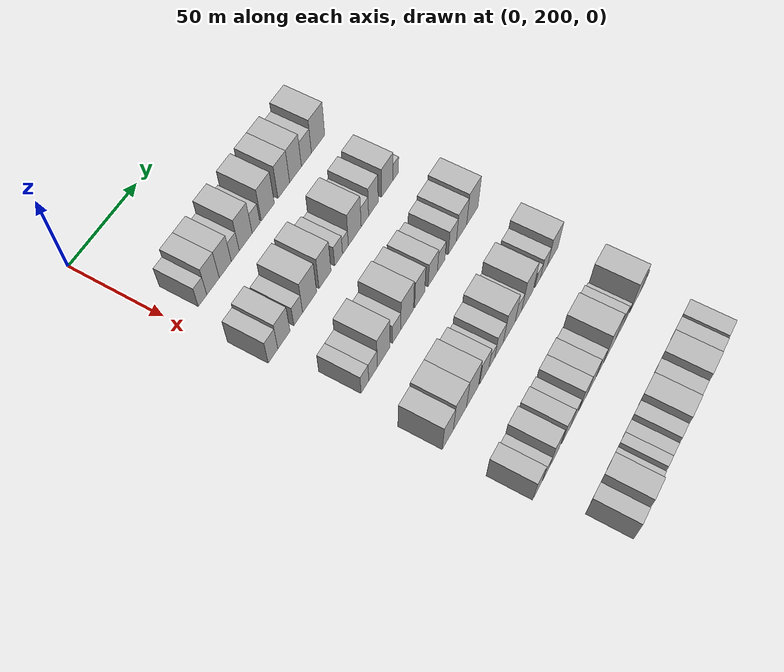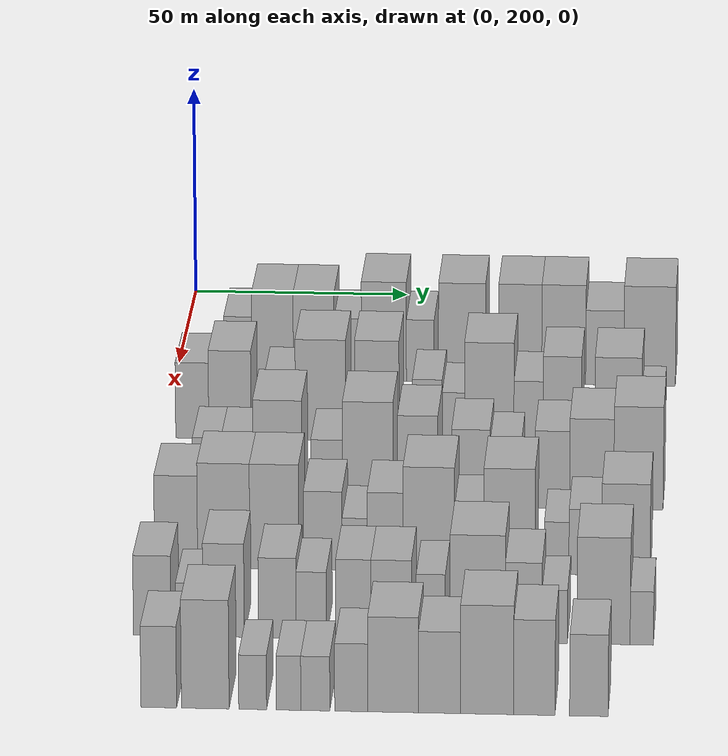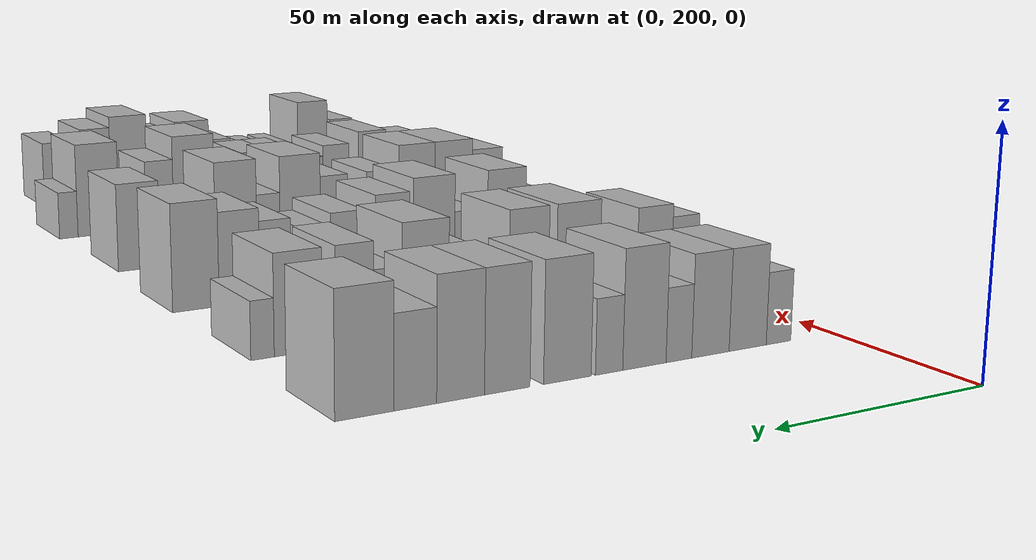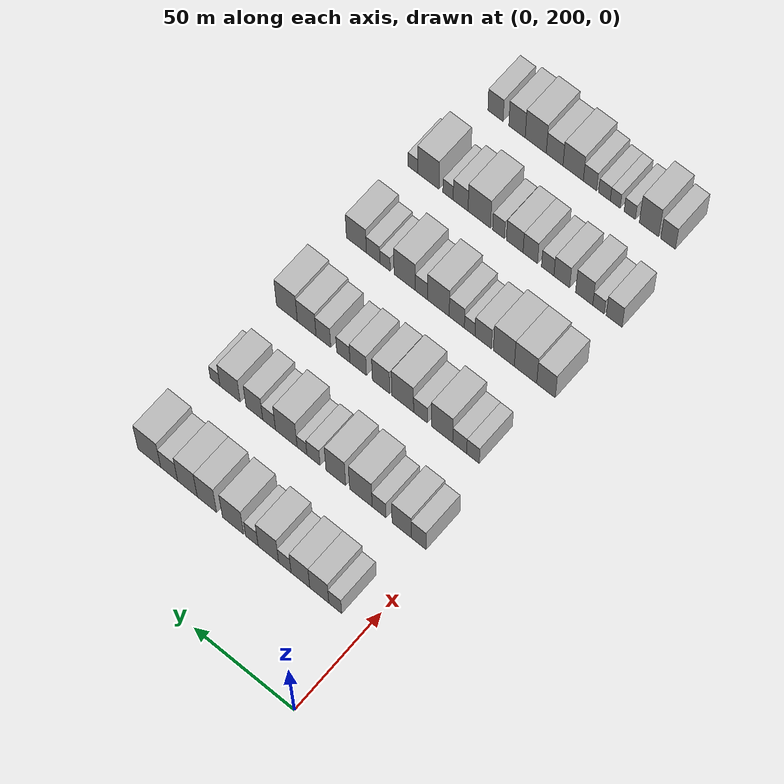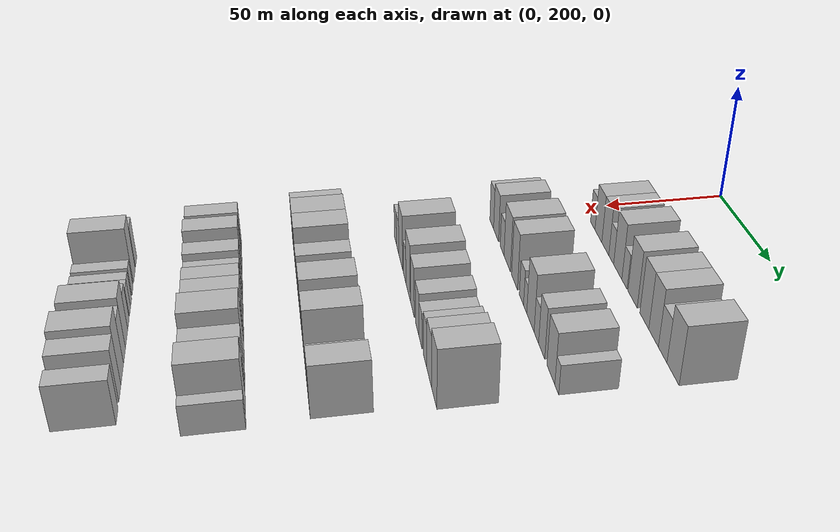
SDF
<sdf version="1.6">
 <world name="default">
  <model name="building_86">
   <static>1</static>
   <pose>50.0000 214.3302 0 0.000000 0.000000 0.000000</pose>
   <link name="link">
    <pose>0 0 7.50 0 0 0</pose>
    <collision name="collision"><geometry><box><size>20.0000 6.4321 15.0000</size></box></geometry></collision>
    <visual name="visual">
     <cast_shadows>0</cast_shadows>
     <geometry><box><size>20.0000 6.4321 15.0000</size></box></geometry>
     <material>
      <script>
       <uri>model://HANNAS_wall/materials/scripts</uri>
       <uri>model://HANNAS_wall/materials/textures</uri>
       <name>vrc/HANNAS_wall</name>
      </script>
     </material>
    </visual>
   </link>
  </model>
  <model name="building_87">
   <static>1</static>
   <pose>50.0000 222.3023 0 0.000000 0.000000 0.000000</pose>
   <link name="link">
    <pose>0 0 10.50 0 0 0</pose>
    <collision name="collision"><geometry><box><size>20.0000 9.5120 21.0000</size></box></geometry></collision>
    <visual name="visual">
     <cast_shadows>0</cast_shadows>
     <geometry><box><size>20.0000 9.5120 21.0000</size></box></geometry>
     <material>
      <script>
       <uri>model://HANNAS_wall/materials/scripts</uri>
       <uri>model://HANNAS_wall/materials/textures</uri>
       <name>vrc/HANNAS_wall</name>
      </script>
     </material>
    </visual>
   </link>
  </model>
  <model name="building_88">
   <static>1</static>
   <pose>50.0000 231.7271 0 0.000000 0.000000 0.000000</pose>
   <link name="link">
    <pose>0 0 10.50 0 0 0</pose>
    <collision name="collision"><geometry><box><size>20.0000 9.3376 21.0000</size></box></geometry></collision>
    <visual name="visual">
     <cast_shadows>0</cast_shadows>
     <geometry><box><size>20.0000 9.3376 21.0000</size></box></geometry>
     <material>
      <script>
       <uri>model://HANNAS_wall/materials/scripts</uri>
       <uri>model://HANNAS_wall/materials/textures</uri>
       <name>vrc/HANNAS_wall</name>
      </script>
     </material>
    </visual>
   </link>
  </model>
  <model name="building_89">
   <static>1</static>
   <pose>50.0000 239.5368 0 0.000000 0.000000 0.000000</pose>
   <link name="link">
    <pose>0 0 7.50 0 0 0</pose>
    <collision name="collision"><geometry><box><size>20.0000 6.2818 15.0000</size></box></geometry></collision>
    <visual name="visual">
     <cast_shadows>0</cast_shadows>
     <geometry><box><size>20.0000 6.2818 15.0000</size></box></geometry>
     <material>
      <script>
       <uri>model://HANNAS_wall/materials/scripts</uri>
       <uri>model://HANNAS_wall/materials/textures</uri>
       <name>vrc/HANNAS_wall</name>
      </script>
     </material>
    </visual>
   </link>
  </model>
  <model name="building_90">
   <static>1</static>
   <pose>50.0000 247.8378 0 0.000000 0.000000 0.000000</pose>
   <link name="link">
    <pose>0 0 12.00 0 0 0</pose>
    <collision name="collision"><geometry><box><size>20.0000 10.3202 24.0000</size></box></geometry></collision>
    <visual name="visual">
     <cast_shadows>0</cast_shadows>
     <geometry><box><size>20.0000 10.3202 24.0000</size></box></geometry>
     <material>
      <script>
       <uri>model://HANNAS_wall/materials/scripts</uri>
       <uri>model://HANNAS_wall/materials/textures</uri>
       <name>vrc/HANNAS_wall</name>
      </script>
     </material>
    </visual>
   </link>
  </model>
  <model name="building_91">
   <static>1</static>
   <pose>50.0000 256.1801 0 0.000000 0.000000 0.000000</pose>
   <link name="link">
    <pose>0 0 7.50 0 0 0</pose>
    <collision name="collision"><geometry><box><size>20.0000 6.3644 15.0000</size></box></geometry></collision>
    <visual name="visual">
     <cast_shadows>0</cast_shadows>
     <geometry><box><size>20.0000 6.3644 15.0000</size></box></geometry>
     <material>
      <script>
       <uri>model://HANNAS_wall/materials/scripts</uri>
       <uri>model://HANNAS_wall/materials/textures</uri>
       <name>vrc/HANNAS_wall</name>
      </script>
     </material>
    </visual>
   </link>
  </model>
  <model name="building_92">
   <static>1</static>
   <pose>50.0000 265.7434 0 0.000000 0.000000 0.000000</pose>
   <link name="link">
    <pose>0 0 12.00 0 0 0</pose>
    <collision name="collision"><geometry><box><size>20.0000 10.7623 24.0000</size></box></geometry></collision>
    <visual name="visual">
     <cast_shadows>0</cast_shadows>
     <geometry><box><size>20.0000 10.7623 24.0000</size></box></geometry>
     <material>
      <script>
       <uri>model://HANNAS_wall/materials/scripts</uri>
       <uri>model://HANNAS_wall/materials/textures</uri>
       <name>vrc/HANNAS_wall</name>
      </script>
     </material>
    </visual>
   </link>
  </model>
  <model name="building_93">
   <static>1</static>
   <pose>50.0000 279.0697 0 0.000000 0.000000 0.000000</pose>
   <link name="link">
    <pose>0 0 12.00 0 0 0</pose>
    <collision name="collision"><geometry><box><size>20.0000 9.8902 24.0000</size></box></geometry></collision>
    <visual name="visual">
     <cast_shadows>0</cast_shadows>
     <geometry><box><size>20.0000 9.8902 24.0000</size></box></geometry>
     <material>
      <script>
       <uri>model://HANNAS_wall/materials/scripts</uri>
       <uri>model://HANNAS_wall/materials/textures</uri>
       <name>vrc/HANNAS_wall</name>
      </script>
     </material>
    </visual>
   </link>
  </model>
  <model name="building_94">
   <static>1</static>
   <pose>50.0000 289.0580 0 0.000000 0.000000 0.000000</pose>
   <link name="link">
    <pose>0 0 12.00 0 0 0</pose>
    <collision name="collision"><geometry><box><size>20.0000 10.0862 24.0000</size></box></geometry></collision>
    <visual name="visual">
     <cast_shadows>0</cast_shadows>
     <geometry><box><size>20.0000 10.0862 24.0000</size></box></geometry>
     <material>
      <script>
       <uri>model://HANNAS_wall/materials/scripts</uri>
       <uri>model://HANNAS_wall/materials/textures</uri>
       <name>vrc/HANNAS_wall</name>
      </script>
     </material>
    </visual>
   </link>
  </model>
  <model name="building_95">
   <static>1</static>
   <pose>50.0000 298.4549 0 0.000000 0.000000 0.000000</pose>
   <link name="link">
    <pose>0 0 9.00 0 0 0</pose>
    <collision name="collision"><geometry><box><size>20.0000 8.7076 18.0000</size></box></geometry></collision>
    <visual name="visual">
     <cast_shadows>0</cast_shadows>
     <geometry><box><size>20.0000 8.7076 18.0000</size></box></geometry>
     <material>
      <script>
       <uri>model://HANNAS_wall/materials/scripts</uri>
       <uri>model://HANNAS_wall/materials/textures</uri>
       <name>vrc/HANNAS_wall</name>
      </script>
     </material>
    </visual>
   </link>
  </model>
  <model name="building_96">
   <static>1</static>
   <pose>50.0000 308.7177 0 0.000000 0.000000 0.000000</pose>
   <link name="link">
    <pose>0 0 12.00 0 0 0</pose>
    <collision name="collision"><geometry><box><size>20.0000 11.8181 24.0000</size></box></geometry></collision>
    <visual name="visual">
     <cast_shadows>0</cast_shadows>
     <geometry><box><size>20.0000 11.8181 24.0000</size></box></geometry>
     <material>
      <script>
       <uri>model://HANNAS_wall/materials/scripts</uri>
       <uri>model://HANNAS_wall/materials/textures</uri>
       <name>vrc/HANNAS_wall</name>
      </script>
     </material>
    </visual>
   </link>
  </model>
  <model name="building_226">
   <static>1</static>
   <pose>90.0000 206.9565 0 0.000000 0.000000 0.000000</pose>
   <link name="link">
    <pose>0 0 9.00 0 0 0</pose>
    <collision name="collision"><geometry><box><size>20.0000 7.4415 18.0000</size></box></geometry></collision>
    <visual name="visual">
     <cast_shadows>0</cast_shadows>
     <geometry><box><size>20.0000 7.4415 18.0000</size></box></geometry>
     <material>
      <script>
       <uri>model://HANNAS_wall/materials/scripts</uri>
       <uri>model://HANNAS_wall/materials/textures</uri>
       <name>vrc/HANNAS_wall</name>
      </script>
     </material>
    </visual>
   </link>
  </model>
  <model name="building_227">
   <static>1</static>
   <pose>90.0000 215.4435 0 0.000000 0.000000 0.000000</pose>
   <link name="link">
    <pose>0 0 10.50 0 0 0</pose>
    <collision name="collision"><geometry><box><size>20.0000 9.5324 21.0000</size></box></geometry></collision>
    <visual name="visual">
     <cast_shadows>0</cast_shadows>
     <geometry><box><size>20.0000 9.5324 21.0000</size></box></geometry>
     <material>
      <script>
       <uri>model://HANNAS_wall/materials/scripts</uri>
       <uri>model://HANNAS_wall/materials/textures</uri>
       <name>vrc/HANNAS_wall</name>
      </script>
     </material>
    </visual>
   </link>
  </model>
  <model name="building_228">
   <static>1</static>
   <pose>90.0000 226.7022 0 0.000000 0.000000 0.000000</pose>
   <link name="link">
    <pose>0 0 7.50 0 0 0</pose>
    <collision name="collision"><geometry><box><size>20.0000 6.9851 15.0000</size></box></geometry></collision>
    <visual name="visual">
     <cast_shadows>0</cast_shadows>
     <geometry><box><size>20.0000 6.9851 15.0000</size></box></geometry>
     <material>
      <script>
       <uri>model://HANNAS_wall/materials/scripts</uri>
       <uri>model://HANNAS_wall/materials/textures</uri>
       <name>vrc/HANNAS_wall</name>
      </script>
     </material>
    </visual>
   </link>
  </model>
  <model name="building_229">
   <static>1</static>
   <pose>90.0000 235.8623 0 0.000000 0.000000 0.000000</pose>
   <link name="link">
    <pose>0 0 12.00 0 0 0</pose>
    <collision name="collision"><geometry><box><size>20.0000 11.3350 24.0000</size></box></geometry></collision>
    <visual name="visual">
     <cast_shadows>0</cast_shadows>
     <geometry><box><size>20.0000 11.3350 24.0000</size></box></geometry>
     <material>
      <script>
       <uri>model://HANNAS_wall/materials/scripts</uri>
       <uri>model://HANNAS_wall/materials/textures</uri>
       <name>vrc/HANNAS_wall</name>
      </script>
     </material>
    </visual>
   </link>
  </model>
  <model name="building_230">
   <static>1</static>
   <pose>90.0000 248.5127 0 0.000000 0.000000 0.000000</pose>
   <link name="link">
    <pose>0 0 12.00 0 0 0</pose>
    <collision name="collision"><geometry><box><size>20.0000 9.9658 24.0000</size></box></geometry></collision>
    <visual name="visual">
     <cast_shadows>0</cast_shadows>
     <geometry><box><size>20.0000 9.9658 24.0000</size></box></geometry>
     <material>
      <script>
       <uri>model://HANNAS_wall/materials/scripts</uri>
       <uri>model://HANNAS_wall/materials/textures</uri>
       <name>vrc/HANNAS_wall</name>
      </script>
     </material>
    </visual>
   </link>
  </model>
  <model name="building_231">
   <static>1</static>
   <pose>90.0000 259.8453 0 0.000000 0.000000 0.000000</pose>
   <link name="link">
    <pose>0 0 7.50 0 0 0</pose>
    <collision name="collision"><geometry><box><size>20.0000 6.6996 15.0000</size></box></geometry></collision>
    <visual name="visual">
     <cast_shadows>0</cast_shadows>
     <geometry><box><size>20.0000 6.6996 15.0000</size></box></geometry>
     <material>
      <script>
       <uri>model://HANNAS_wall/materials/scripts</uri>
       <uri>model://HANNAS_wall/materials/textures</uri>
       <name>vrc/HANNAS_wall</name>
      </script>
     </material>
    </visual>
   </link>
  </model>
  <model name="building_232">
   <static>1</static>
   <pose>90.0000 265.6976 0 0.000000 0.000000 0.000000</pose>
   <link name="link">
    <pose>0 0 6.00 0 0 0</pose>
    <collision name="collision"><geometry><box><size>20.0000 5.0049 12.0000</size></box></geometry></collision>
    <visual name="visual">
     <cast_shadows>0</cast_shadows>
     <geometry><box><size>20.0000 5.0049 12.0000</size></box></geometry>
     <material>
      <script>
       <uri>model://HANNAS_wall/materials/scripts</uri>
       <uri>model://HANNAS_wall/materials/textures</uri>
       <name>vrc/HANNAS_wall</name>
      </script>
     </material>
    </visual>
   </link>
  </model>
  <model name="building_233">
   <static>1</static>
   <pose>90.0000 273.7436 0 0.000000 0.000000 0.000000</pose>
   <link name="link">
    <pose>0 0 12.00 0 0 0</pose>
    <collision name="collision"><geometry><box><size>20.0000 11.0871 24.0000</size></box></geometry></collision>
    <visual name="visual">
     <cast_shadows>0</cast_shadows>
     <geometry><box><size>20.0000 11.0871 24.0000</size></box></geometry>
     <material>
      <script>
       <uri>model://HANNAS_wall/materials/scripts</uri>
       <uri>model://HANNAS_wall/materials/textures</uri>
       <name>vrc/HANNAS_wall</name>
      </script>
     </material>
    </visual>
   </link>
  </model>
  <model name="building_234">
   <static>1</static>
   <pose>90.0000 282.5493 0 0.000000 0.000000 0.000000</pose>
   <link name="link">
    <pose>0 0 7.50 0 0 0</pose>
    <collision name="collision"><geometry><box><size>20.0000 6.5242 15.0000</size></box></geometry></collision>
    <visual name="visual">
     <cast_shadows>0</cast_shadows>
     <geometry><box><size>20.0000 6.5242 15.0000</size></box></geometry>
     <material>
      <script>
       <uri>model://HANNAS_wall/materials/scripts</uri>
       <uri>model://HANNAS_wall/materials/textures</uri>
       <name>vrc/HANNAS_wall</name>
      </script>
     </material>
    </visual>
   </link>
  </model>
  <model name="building_235">
   <static>1</static>
   <pose>90.0000 290.1225 0 0.000000 0.000000 0.000000</pose>
   <link name="link">
    <pose>0 0 10.50 0 0 0</pose>
    <collision name="collision"><geometry><box><size>20.0000 8.6223 21.0000</size></box></geometry></collision>
    <visual name="visual">
     <cast_shadows>0</cast_shadows>
     <geometry><box><size>20.0000 8.6223 21.0000</size></box></geometry>
     <material>
      <script>
       <uri>model://HANNAS_wall/materials/scripts</uri>
       <uri>model://HANNAS_wall/materials/textures</uri>
       <name>vrc/HANNAS_wall</name>
      </script>
     </material>
    </visual>
   </link>
  </model>
  <model name="building_236">
   <static>1</static>
   <pose>90.0000 302.6804 0 0.000000 0.000000 0.000000</pose>
   <link name="link">
    <pose>0 0 10.50 0 0 0</pose>
    <collision name="collision"><geometry><box><size>20.0000 10.4935 21.0000</size></box></geometry></collision>
    <visual name="visual">
     <cast_shadows>0</cast_shadows>
     <geometry><box><size>20.0000 10.4935 21.0000</size></box></geometry>
     <material>
      <script>
       <uri>model://HANNAS_wall/materials/scripts</uri>
       <uri>model://HANNAS_wall/materials/textures</uri>
       <name>vrc/HANNAS_wall</name>
      </script>
     </material>
    </visual>
   </link>
  </model>
  <model name="building_237">
   <static>1</static>
   <pose>90.0000 310.4442 0 0.000000 0.000000 0.000000</pose>
   <link name="link">
    <pose>0 0 6.00 0 0 0</pose>
    <collision name="collision"><geometry><box><size>20.0000 5.0341 12.0000</size></box></geometry></collision>
    <visual name="visual">
     <cast_shadows>0</cast_shadows>
     <geometry><box><size>20.0000 5.0341 12.0000</size></box></geometry>
     <material>
      <script>
       <uri>model://HANNAS_wall/materials/scripts</uri>
       <uri>model://HANNAS_wall/materials/textures</uri>
       <name>vrc/HANNAS_wall</name>
      </script>
     </material>
    </visual>
   </link>
  </model>
  <model name="building_367">
   <static>1</static>
   <pose>130.0000 213.3689 0 0.000000 0.000000 0.000000</pose>
   <link name="link">
    <pose>0 0 7.50 0 0 0</pose>
    <collision name="collision"><geometry><box><size>20.0000 6.2706 15.0000</size></box></geometry></collision>
    <visual name="visual">
     <cast_shadows>0</cast_shadows>
     <geometry><box><size>20.0000 6.2706 15.0000</size></box></geometry>
     <material>
      <script>
       <uri>model://HANNAS_wall/materials/scripts</uri>
       <uri>model://HANNAS_wall/materials/textures</uri>
       <name>vrc/HANNAS_wall</name>
      </script>
     </material>
    </visual>
   </link>
  </model>
  <model name="building_368">
   <static>1</static>
   <pose>130.0000 220.0252 0 0.000000 0.000000 0.000000</pose>
   <link name="link">
    <pose>0 0 7.50 0 0 0</pose>
    <collision name="collision"><geometry><box><size>20.0000 7.0419 15.0000</size></box></geometry></collision>
    <visual name="visual">
     <cast_shadows>0</cast_shadows>
     <geometry><box><size>20.0000 7.0419 15.0000</size></box></geometry>
     <material>
      <script>
       <uri>model://HANNAS_wall/materials/scripts</uri>
       <uri>model://HANNAS_wall/materials/textures</uri>
       <name>vrc/HANNAS_wall</name>
      </script>
     </material>
    </visual>
   </link>
  </model>
  <model name="building_369">
   <static>1</static>
   <pose>130.0000 228.9114 0 0.000000 0.000000 0.000000</pose>
   <link name="link">
    <pose>0 0 12.00 0 0 0</pose>
    <collision name="collision"><geometry><box><size>20.0000 10.7306 24.0000</size></box></geometry></collision>
    <visual name="visual">
     <cast_shadows>0</cast_shadows>
     <geometry><box><size>20.0000 10.7306 24.0000</size></box></geometry>
     <material>
      <script>
       <uri>model://HANNAS_wall/materials/scripts</uri>
       <uri>model://HANNAS_wall/materials/textures</uri>
       <name>vrc/HANNAS_wall</name>
      </script>
     </material>
    </visual>
   </link>
  </model>
  <model name="building_370">
   <static>1</static>
   <pose>130.0000 239.7657 0 0.000000 0.000000 0.000000</pose>
   <link name="link">
    <pose>0 0 7.50 0 0 0</pose>
    <collision name="collision"><geometry><box><size>20.0000 6.9780 15.0000</size></box></geometry></collision>
    <visual name="visual">
     <cast_shadows>0</cast_shadows>
     <geometry><box><size>20.0000 6.9780 15.0000</size></box></geometry>
     <material>
      <script>
       <uri>model://HANNAS_wall/materials/scripts</uri>
       <uri>model://HANNAS_wall/materials/textures</uri>
       <name>vrc/HANNAS_wall</name>
      </script>
     </material>
    </visual>
   </link>
  </model>
  <model name="building_371">
   <static>1</static>
   <pose>130.0000 248.7969 0 0.000000 0.000000 0.000000</pose>
   <link name="link">
    <pose>0 0 12.00 0 0 0</pose>
    <collision name="collision"><geometry><box><size>20.0000 11.0843 24.0000</size></box></geometry></collision>
    <visual name="visual">
     <cast_shadows>0</cast_shadows>
     <geometry><box><size>20.0000 11.0843 24.0000</size></box></geometry>
     <material>
      <script>
       <uri>model://HANNAS_wall/materials/scripts</uri>
       <uri>model://HANNAS_wall/materials/textures</uri>
       <name>vrc/HANNAS_wall</name>
      </script>
     </material>
    </visual>
   </link>
  </model>
  <model name="building_372">
   <static>1</static>
   <pose>130.0000 259.7810 0 0.000000 0.000000 0.000000</pose>
   <link name="link">
    <pose>0 0 10.50 0 0 0</pose>
    <collision name="collision"><geometry><box><size>20.0000 8.8839 21.0000</size></box></geometry></collision>
    <visual name="visual">
     <cast_shadows>0</cast_shadows>
     <geometry><box><size>20.0000 8.8839 21.0000</size></box></geometry>
     <material>
      <script>
       <uri>model://HANNAS_wall/materials/scripts</uri>
       <uri>model://HANNAS_wall/materials/textures</uri>
       <name>vrc/HANNAS_wall</name>
      </script>
     </material>
    </visual>
   </link>
  </model>
  <model name="building_373">
   <static>1</static>
   <pose>130.0000 271.4508 0 0.000000 0.000000 0.000000</pose>
   <link name="link">
    <pose>0 0 9.00 0 0 0</pose>
    <collision name="collision"><geometry><box><size>20.0000 8.4557 18.0000</size></box></geometry></collision>
    <visual name="visual">
     <cast_shadows>0</cast_shadows>
     <geometry><box><size>20.0000 8.4557 18.0000</size></box></geometry>
     <material>
      <script>
       <uri>model://HANNAS_wall/materials/scripts</uri>
       <uri>model://HANNAS_wall/materials/textures</uri>
       <name>vrc/HANNAS_wall</name>
      </script>
     </material>
    </visual>
   </link>
  </model>
  <model name="building_374">
   <static>1</static>
   <pose>130.0000 279.1153 0 0.000000 0.000000 0.000000</pose>
   <link name="link">
    <pose>0 0 7.50 0 0 0</pose>
    <collision name="collision"><geometry><box><size>20.0000 6.8733 15.0000</size></box></geometry></collision>
    <visual name="visual">
     <cast_shadows>0</cast_shadows>
     <geometry><box><size>20.0000 6.8733 15.0000</size></box></geometry>
     <material>
      <script>
       <uri>model://HANNAS_wall/materials/scripts</uri>
       <uri>model://HANNAS_wall/materials/textures</uri>
       <name>vrc/HANNAS_wall</name>
      </script>
     </material>
    </visual>
   </link>
  </model>
  <model name="building_375">
   <static>1</static>
   <pose>130.0000 289.3738 0 0.000000 0.000000 0.000000</pose>
   <link name="link">
    <pose>0 0 9.00 0 0 0</pose>
    <collision name="collision"><geometry><box><size>20.0000 7.6436 18.0000</size></box></geometry></collision>
    <visual name="visual">
     <cast_shadows>0</cast_shadows>
     <geometry><box><size>20.0000 7.6436 18.0000</size></box></geometry>
     <material>
      <script>
       <uri>model://HANNAS_wall/materials/scripts</uri>
       <uri>model://HANNAS_wall/materials/textures</uri>
       <name>vrc/HANNAS_wall</name>
      </script>
     </material>
    </visual>
   </link>
  </model>
  <model name="building_376">
   <static>1</static>
   <pose>130.0000 298.0386 0 0.000000 0.000000 0.000000</pose>
   <link name="link">
    <pose>0 0 10.50 0 0 0</pose>
    <collision name="collision"><geometry><box><size>20.0000 9.6861 21.0000</size></box></geometry></collision>
    <visual name="visual">
     <cast_shadows>0</cast_shadows>
     <geometry><box><size>20.0000 9.6861 21.0000</size></box></geometry>
     <material>
      <script>
       <uri>model://HANNAS_wall/materials/scripts</uri>
       <uri>model://HANNAS_wall/materials/textures</uri>
       <name>vrc/HANNAS_wall</name>
      </script>
     </material>
    </visual>
   </link>
  </model>
  <model name="building_377">
   <static>1</static>
   <pose>130.0000 308.3002 0 0.000000 0.000000 0.000000</pose>
   <link name="link">
    <pose>0 0 12.00 0 0 0</pose>
    <collision name="collision"><geometry><box><size>20.0000 10.8370 24.0000</size></box></geometry></collision>
    <visual name="visual">
     <cast_shadows>0</cast_shadows>
     <geometry><box><size>20.0000 10.8370 24.0000</size></box></geometry>
     <material>
      <script>
       <uri>model://HANNAS_wall/materials/scripts</uri>
       <uri>model://HANNAS_wall/materials/textures</uri>
       <name>vrc/HANNAS_wall</name>
      </script>
     </material>
    </visual>
   </link>
  </model>
  <model name="building_508">
   <static>1</static>
   <pose>170.0000 209.7762 0 0.000000 0.000000 0.000000</pose>
   <link name="link">
    <pose>0 0 10.50 0 0 0</pose>
    <collision name="collision"><geometry><box><size>20.0000 9.2964 21.0000</size></box></geometry></collision>
    <visual name="visual">
     <cast_shadows>0</cast_shadows>
     <geometry><box><size>20.0000 9.2964 21.0000</size></box></geometry>
     <material>
      <script>
       <uri>model://HANNAS_wall/materials/scripts</uri>
       <uri>model://HANNAS_wall/materials/textures</uri>
       <name>vrc/HANNAS_wall</name>
      </script>
     </material>
    </visual>
   </link>
  </model>
  <model name="building_509">
   <static>1</static>
   <pose>170.0000 220.0594 0 0.000000 0.000000 0.000000</pose>
   <link name="link">
    <pose>0 0 12.00 0 0 0</pose>
    <collision name="collision"><geometry><box><size>20.0000 11.2701 24.0000</size></box></geometry></collision>
    <visual name="visual">
     <cast_shadows>0</cast_shadows>
     <geometry><box><size>20.0000 11.2701 24.0000</size></box></geometry>
     <material>
      <script>
       <uri>model://HANNAS_wall/materials/scripts</uri>
       <uri>model://HANNAS_wall/materials/textures</uri>
       <name>vrc/HANNAS_wall</name>
      </script>
     </material>
    </visual>
   </link>
  </model>
  <model name="building_510">
   <static>1</static>
   <pose>170.0000 230.9862 0 0.000000 0.000000 0.000000</pose>
   <link name="link">
    <pose>0 0 12.00 0 0 0</pose>
    <collision name="collision"><geometry><box><size>20.0000 10.5835 24.0000</size></box></geometry></collision>
    <visual name="visual">
     <cast_shadows>0</cast_shadows>
     <geometry><box><size>20.0000 10.5835 24.0000</size></box></geometry>
     <material>
      <script>
       <uri>model://HANNAS_wall/materials/scripts</uri>
       <uri>model://HANNAS_wall/materials/textures</uri>
       <name>vrc/HANNAS_wall</name>
      </script>
     </material>
    </visual>
   </link>
  </model>
  <model name="building_511">
   <static>1</static>
   <pose>170.0000 241.4493 0 0.000000 0.000000 0.000000</pose>
   <link name="link">
    <pose>0 0 9.00 0 0 0</pose>
    <collision name="collision"><geometry><box><size>20.0000 8.3426 18.0000</size></box></geometry></collision>
    <visual name="visual">
     <cast_shadows>0</cast_shadows>
     <geometry><box><size>20.0000 8.3426 18.0000</size></box></geometry>
     <material>
      <script>
       <uri>model://HANNAS_wall/materials/scripts</uri>
       <uri>model://HANNAS_wall/materials/textures</uri>
       <name>vrc/HANNAS_wall</name>
      </script>
     </material>
    </visual>
   </link>
  </model>
  <model name="building_512">
   <static>1</static>
   <pose>170.0000 248.3232 0 0.000000 0.000000 0.000000</pose>
   <link name="link">
    <pose>0 0 6.00 0 0 0</pose>
    <collision name="collision"><geometry><box><size>20.0000 5.4052 12.0000</size></box></geometry></collision>
    <visual name="visual">
     <cast_shadows>0</cast_shadows>
     <geometry><box><size>20.0000 5.4052 12.0000</size></box></geometry>
     <material>
      <script>
       <uri>model://HANNAS_wall/materials/scripts</uri>
       <uri>model://HANNAS_wall/materials/textures</uri>
       <name>vrc/HANNAS_wall</name>
      </script>
     </material>
    </visual>
   </link>
  </model>
  <model name="building_513">
   <static>1</static>
   <pose>170.0000 254.8805 0 0.000000 0.000000 0.000000</pose>
   <link name="link">
    <pose>0 0 9.00 0 0 0</pose>
    <collision name="collision"><geometry><box><size>20.0000 7.7095 18.0000</size></box></geometry></collision>
    <visual name="visual">
     <cast_shadows>0</cast_shadows>
     <geometry><box><size>20.0000 7.7095 18.0000</size></box></geometry>
     <material>
      <script>
       <uri>model://HANNAS_wall/materials/scripts</uri>
       <uri>model://HANNAS_wall/materials/textures</uri>
       <name>vrc/HANNAS_wall</name>
      </script>
     </material>
    </visual>
   </link>
  </model>
  <model name="building_514">
   <static>1</static>
   <pose>170.0000 264.2730 0 0.000000 0.000000 0.000000</pose>
   <link name="link">
    <pose>0 0 12.00 0 0 0</pose>
    <collision name="collision"><geometry><box><size>20.0000 11.0755 24.0000</size></box></geometry></collision>
    <visual name="visual">
     <cast_shadows>0</cast_shadows>
     <geometry><box><size>20.0000 11.0755 24.0000</size></box></geometry>
     <material>
      <script>
       <uri>model://HANNAS_wall/materials/scripts</uri>
       <uri>model://HANNAS_wall/materials/textures</uri>
       <name>vrc/HANNAS_wall</name>
      </script>
     </material>
    </visual>
   </link>
  </model>
  <model name="building_515">
   <static>1</static>
   <pose>170.0000 272.9616 0 0.000000 0.000000 0.000000</pose>
   <link name="link">
    <pose>0 0 7.50 0 0 0</pose>
    <collision name="collision"><geometry><box><size>20.0000 6.3017 15.0000</size></box></geometry></collision>
    <visual name="visual">
     <cast_shadows>0</cast_shadows>
     <geometry><box><size>20.0000 6.3017 15.0000</size></box></geometry>
     <material>
      <script>
       <uri>model://HANNAS_wall/materials/scripts</uri>
       <uri>model://HANNAS_wall/materials/textures</uri>
       <name>vrc/HANNAS_wall</name>
      </script>
     </material>
    </visual>
   </link>
  </model>
  <model name="building_516">
   <static>1</static>
   <pose>170.0000 281.6168 0 0.000000 0.000000 0.000000</pose>
   <link name="link">
    <pose>0 0 12.00 0 0 0</pose>
    <collision name="collision"><geometry><box><size>20.0000 11.0087 24.0000</size></box></geometry></collision>
    <visual name="visual">
     <cast_shadows>0</cast_shadows>
     <geometry><box><size>20.0000 11.0087 24.0000</size></box></geometry>
     <material>
      <script>
       <uri>model://HANNAS_wall/materials/scripts</uri>
       <uri>model://HANNAS_wall/materials/textures</uri>
       <name>vrc/HANNAS_wall</name>
      </script>
     </material>
    </visual>
   </link>
  </model>
  <model name="building_517">
   <static>1</static>
   <pose>170.0000 291.7744 0 0.000000 0.000000 0.000000</pose>
   <link name="link">
    <pose>0 0 6.00 0 0 0</pose>
    <collision name="collision"><geometry><box><size>20.0000 5.3063 12.0000</size></box></geometry></collision>
    <visual name="visual">
     <cast_shadows>0</cast_shadows>
     <geometry><box><size>20.0000 5.3063 12.0000</size></box></geometry>
     <material>
      <script>
       <uri>model://HANNAS_wall/materials/scripts</uri>
       <uri>model://HANNAS_wall/materials/textures</uri>
       <name>vrc/HANNAS_wall</name>
      </script>
     </material>
    </visual>
   </link>
  </model>
  <model name="building_518">
   <static>1</static>
   <pose>170.0000 297.9496 0 0.000000 0.000000 0.000000</pose>
   <link name="link">
    <pose>0 0 7.50 0 0 0</pose>
    <collision name="collision"><geometry><box><size>20.0000 7.0441 15.0000</size></box></geometry></collision>
    <visual name="visual">
     <cast_shadows>0</cast_shadows>
     <geometry><box><size>20.0000 7.0441 15.0000</size></box></geometry>
     <material>
      <script>
       <uri>model://HANNAS_wall/materials/scripts</uri>
       <uri>model://HANNAS_wall/materials/textures</uri>
       <name>vrc/HANNAS_wall</name>
      </script>
     </material>
    </visual>
   </link>
  </model>
  <model name="building_519">
   <static>1</static>
   <pose>170.0000 306.6754 0 0.000000 0.000000 0.000000</pose>
   <link name="link">
    <pose>0 0 10.50 0 0 0</pose>
    <collision name="collision"><geometry><box><size>20.0000 10.4076 21.0000</size></box></geometry></collision>
    <visual name="visual">
     <cast_shadows>0</cast_shadows>
     <geometry><box><size>20.0000 10.4076 21.0000</size></box></geometry>
     <material>
      <script>
       <uri>model://HANNAS_wall/materials/scripts</uri>
       <uri>model://HANNAS_wall/materials/textures</uri>
       <name>vrc/HANNAS_wall</name>
      </script>
     </material>
    </visual>
   </link>
  </model>
  <model name="building_646">
   <static>1</static>
   <pose>210.0000 207.9643 0 0.000000 0.000000 0.000000</pose>
   <link name="link">
    <pose>0 0 9.00 0 0 0</pose>
    <collision name="collision"><geometry><box><size>20.0000 7.9495 18.0000</size></box></geometry></collision>
    <visual name="visual">
     <cast_shadows>0</cast_shadows>
     <geometry><box><size>20.0000 7.9495 18.0000</size></box></geometry>
     <material>
      <script>
       <uri>model://HANNAS_wall/materials/scripts</uri>
       <uri>model://HANNAS_wall/materials/textures</uri>
       <name>vrc/HANNAS_wall</name>
      </script>
     </material>
    </visual>
   </link>
  </model>
  <model name="building_647">
   <static>1</static>
   <pose>210.0000 215.8190 0 0.000000 0.000000 0.000000</pose>
   <link name="link">
    <pose>0 0 6.00 0 0 0</pose>
    <collision name="collision"><geometry><box><size>20.0000 5.7599 12.0000</size></box></geometry></collision>
    <visual name="visual">
     <cast_shadows>0</cast_shadows>
     <geometry><box><size>20.0000 5.7599 12.0000</size></box></geometry>
     <material>
      <script>
       <uri>model://HANNAS_wall/materials/scripts</uri>
       <uri>model://HANNAS_wall/materials/textures</uri>
       <name>vrc/HANNAS_wall</name>
      </script>
     </material>
    </visual>
   </link>
  </model>
  <model name="building_648">
   <static>1</static>
   <pose>210.0000 223.0482 0 0.000000 0.000000 0.000000</pose>
   <link name="link">
    <pose>0 0 10.50 0 0 0</pose>
    <collision name="collision"><geometry><box><size>20.0000 8.6986 21.0000</size></box></geometry></collision>
    <visual name="visual">
     <cast_shadows>0</cast_shadows>
     <geometry><box><size>20.0000 8.6986 21.0000</size></box></geometry>
     <material>
      <script>
       <uri>model://HANNAS_wall/materials/scripts</uri>
       <uri>model://HANNAS_wall/materials/textures</uri>
       <name>vrc/HANNAS_wall</name>
      </script>
     </material>
    </visual>
   </link>
  </model>
  <model name="building_649">
   <static>1</static>
   <pose>210.0000 234.3826 0 0.000000 0.000000 0.000000</pose>
   <link name="link">
    <pose>0 0 9.00 0 0 0</pose>
    <collision name="collision"><geometry><box><size>20.0000 7.9702 18.0000</size></box></geometry></collision>
    <visual name="visual">
     <cast_shadows>0</cast_shadows>
     <geometry><box><size>20.0000 7.9702 18.0000</size></box></geometry>
     <material>
      <script>
       <uri>model://HANNAS_wall/materials/scripts</uri>
       <uri>model://HANNAS_wall/materials/textures</uri>
       <name>vrc/HANNAS_wall</name>
      </script>
     </material>
    </visual>
   </link>
  </model>
  <model name="building_650">
   <static>1</static>
   <pose>210.0000 241.5484 0 0.000000 0.000000 0.000000</pose>
   <link name="link">
    <pose>0 0 7.50 0 0 0</pose>
    <collision name="collision"><geometry><box><size>20.0000 6.3613 15.0000</size></box></geometry></collision>
    <visual name="visual">
     <cast_shadows>0</cast_shadows>
     <geometry><box><size>20.0000 6.3613 15.0000</size></box></geometry>
     <material>
      <script>
       <uri>model://HANNAS_wall/materials/scripts</uri>
       <uri>model://HANNAS_wall/materials/textures</uri>
       <name>vrc/HANNAS_wall</name>
      </script>
     </material>
    </visual>
   </link>
  </model>
  <model name="building_651">
   <static>1</static>
   <pose>210.0000 250.4355 0 0.000000 0.000000 0.000000</pose>
   <link name="link">
    <pose>0 0 9.00 0 0 0</pose>
    <collision name="collision"><geometry><box><size>20.0000 7.4130 18.0000</size></box></geometry></collision>
    <visual name="visual">
     <cast_shadows>0</cast_shadows>
     <geometry><box><size>20.0000 7.4130 18.0000</size></box></geometry>
     <material>
      <script>
       <uri>model://HANNAS_wall/materials/scripts</uri>
       <uri>model://HANNAS_wall/materials/textures</uri>
       <name>vrc/HANNAS_wall</name>
      </script>
     </material>
    </visual>
   </link>
  </model>
  <model name="building_652">
   <static>1</static>
   <pose>210.0000 258.4099 0 0.000000 0.000000 0.000000</pose>
   <link name="link">
    <pose>0 0 9.00 0 0 0</pose>
    <collision name="collision"><geometry><box><size>20.0000 8.5358 18.0000</size></box></geometry></collision>
    <visual name="visual">
     <cast_shadows>0</cast_shadows>
     <geometry><box><size>20.0000 8.5358 18.0000</size></box></geometry>
     <material>
      <script>
       <uri>model://HANNAS_wall/materials/scripts</uri>
       <uri>model://HANNAS_wall/materials/textures</uri>
       <name>vrc/HANNAS_wall</name>
      </script>
     </material>
    </visual>
   </link>
  </model>
  <model name="building_653">
   <static>1</static>
   <pose>210.0000 266.7424 0 0.000000 0.000000 0.000000</pose>
   <link name="link">
    <pose>0 0 7.50 0 0 0</pose>
    <collision name="collision"><geometry><box><size>20.0000 6.1291 15.0000</size></box></geometry></collision>
    <visual name="visual">
     <cast_shadows>0</cast_shadows>
     <geometry><box><size>20.0000 6.1291 15.0000</size></box></geometry>
     <material>
      <script>
       <uri>model://HANNAS_wall/materials/scripts</uri>
       <uri>model://HANNAS_wall/materials/textures</uri>
       <name>vrc/HANNAS_wall</name>
      </script>
     </material>
    </visual>
   </link>
  </model>
  <model name="building_654">
   <static>1</static>
   <pose>210.0000 276.6194 0 0.000000 0.000000 0.000000</pose>
   <link name="link">
    <pose>0 0 12.00 0 0 0</pose>
    <collision name="collision"><geometry><box><size>20.0000 11.6249 24.0000</size></box></geometry></collision>
    <visual name="visual">
     <cast_shadows>0</cast_shadows>
     <geometry><box><size>20.0000 11.6249 24.0000</size></box></geometry>
     <material>
      <script>
       <uri>model://HANNAS_wall/materials/scripts</uri>
       <uri>model://HANNAS_wall/materials/textures</uri>
       <name>vrc/HANNAS_wall</name>
      </script>
     </material>
    </visual>
   </link>
  </model>
  <model name="building_655">
   <static>1</static>
   <pose>210.0000 286.2993 0 0.000000 0.000000 0.000000</pose>
   <link name="link">
    <pose>0 0 9.00 0 0 0</pose>
    <collision name="collision"><geometry><box><size>20.0000 7.7349 18.0000</size></box></geometry></collision>
    <visual name="visual">
     <cast_shadows>0</cast_shadows>
     <geometry><box><size>20.0000 7.7349 18.0000</size></box></geometry>
     <material>
      <script>
       <uri>model://HANNAS_wall/materials/scripts</uri>
       <uri>model://HANNAS_wall/materials/textures</uri>
       <name>vrc/HANNAS_wall</name>
      </script>
     </material>
    </visual>
   </link>
  </model>
  <model name="building_656">
   <static>1</static>
   <pose>210.0000 292.8428 0 0.000000 0.000000 0.000000</pose>
   <link name="link">
    <pose>0 0 6.00 0 0 0</pose>
    <collision name="collision"><geometry><box><size>20.0000 5.3522 12.0000</size></box></geometry></collision>
    <visual name="visual">
     <cast_shadows>0</cast_shadows>
     <geometry><box><size>20.0000 5.3522 12.0000</size></box></geometry>
     <material>
      <script>
       <uri>model://HANNAS_wall/materials/scripts</uri>
       <uri>model://HANNAS_wall/materials/textures</uri>
       <name>vrc/HANNAS_wall</name>
      </script>
     </material>
    </visual>
   </link>
  </model>
  <model name="building_657">
   <static>1</static>
   <pose>210.0000 303.1133 0 0.000000 0.000000 0.000000</pose>
   <link name="link">
    <pose>0 0 12.00 0 0 0</pose>
    <collision name="collision"><geometry><box><size>20.0000 11.1888 24.0000</size></box></geometry></collision>
    <visual name="visual">
     <cast_shadows>0</cast_shadows>
     <geometry><box><size>20.0000 11.1888 24.0000</size></box></geometry>
     <material>
      <script>
       <uri>model://HANNAS_wall/materials/scripts</uri>
       <uri>model://HANNAS_wall/materials/textures</uri>
       <name>vrc/HANNAS_wall</name>
      </script>
     </material>
    </visual>
   </link>
  </model>
  <model name="building_658">
   <static>1</static>
   <pose>210.0000 311.1596 0 0.000000 0.000000 0.000000</pose>
   <link name="link">
    <pose>0 0 6.00 0 0 0</pose>
    <collision name="collision"><geometry><box><size>20.0000 4.9038 12.0000</size></box></geometry></collision>
    <visual name="visual">
     <cast_shadows>0</cast_shadows>
     <geometry><box><size>20.0000 4.9038 12.0000</size></box></geometry>
     <material>
      <script>
       <uri>model://HANNAS_wall/materials/scripts</uri>
       <uri>model://HANNAS_wall/materials/textures</uri>
       <name>vrc/HANNAS_wall</name>
      </script>
     </material>
    </visual>
   </link>
  </model>
  <model name="building_790">
   <static>1</static>
   <pose>250.0000 212.6490 0 0.000000 0.000000 0.000000</pose>
   <link name="link">
    <pose>0 0 9.00 0 0 0</pose>
    <collision name="collision"><geometry><box><size>20.0000 7.3649 18.0000</size></box></geometry></collision>
    <visual name="visual">
     <cast_shadows>0</cast_shadows>
     <geometry><box><size>20.0000 7.3649 18.0000</size></box></geometry>
     <material>
      <script>
       <uri>model://HANNAS_wall/materials/scripts</uri>
       <uri>model://HANNAS_wall/materials/textures</uri>
       <name>vrc/HANNAS_wall</name>
      </script>
     </material>
    </visual>
   </link>
  </model>
  <model name="building_791">
   <static>1</static>
   <pose>250.0000 222.2535 0 0.000000 0.000000 0.000000</pose>
   <link name="link">
    <pose>0 0 12.00 0 0 0</pose>
    <collision name="collision"><geometry><box><size>20.0000 9.8441 24.0000</size></box></geometry></collision>
    <visual name="visual">
     <cast_shadows>0</cast_shadows>
     <geometry><box><size>20.0000 9.8441 24.0000</size></box></geometry>
     <material>
      <script>
       <uri>model://HANNAS_wall/materials/scripts</uri>
       <uri>model://HANNAS_wall/materials/textures</uri>
       <name>vrc/HANNAS_wall</name>
      </script>
     </material>
    </visual>
   </link>
  </model>
  <model name="building_792">
   <static>1</static>
   <pose>250.0000 232.0535 0 0.000000 0.000000 0.000000</pose>
   <link name="link">
    <pose>0 0 6.00 0 0 0</pose>
    <collision name="collision"><geometry><box><size>20.0000 5.7558 12.0000</size></box></geometry></collision>
    <visual name="visual">
     <cast_shadows>0</cast_shadows>
     <geometry><box><size>20.0000 5.7558 12.0000</size></box></geometry>
     <material>
      <script>
       <uri>model://HANNAS_wall/materials/scripts</uri>
       <uri>model://HANNAS_wall/materials/textures</uri>
       <name>vrc/HANNAS_wall</name>
      </script>
     </material>
    </visual>
   </link>
  </model>
  <model name="building_793">
   <static>1</static>
   <pose>250.0000 239.4605 0 0.000000 0.000000 0.000000</pose>
   <link name="link">
    <pose>0 0 6.00 0 0 0</pose>
    <collision name="collision"><geometry><box><size>20.0000 5.0582 12.0000</size></box></geometry></collision>
    <visual name="visual">
     <cast_shadows>0</cast_shadows>
     <geometry><box><size>20.0000 5.0582 12.0000</size></box></geometry>
     <material>
      <script>
       <uri>model://HANNAS_wall/materials/scripts</uri>
       <uri>model://HANNAS_wall/materials/textures</uri>
       <name>vrc/HANNAS_wall</name>
      </script>
     </material>
    </visual>
   </link>
  </model>
  <model name="building_794">
   <static>1</static>
   <pose>250.0000 244.9816 0 0.000000 0.000000 0.000000</pose>
   <link name="link">
    <pose>0 0 6.00 0 0 0</pose>
    <collision name="collision"><geometry><box><size>20.0000 5.9841 12.0000</size></box></geometry></collision>
    <visual name="visual">
     <cast_shadows>0</cast_shadows>
     <geometry><box><size>20.0000 5.9841 12.0000</size></box></geometry>
     <material>
      <script>
       <uri>model://HANNAS_wall/materials/scripts</uri>
       <uri>model://HANNAS_wall/materials/textures</uri>
       <name>vrc/HANNAS_wall</name>
      </script>
     </material>
    </visual>
   </link>
  </model>
  <model name="building_795">
   <static>1</static>
   <pose>250.0000 252.3840 0 0.000000 0.000000 0.000000</pose>
   <link name="link">
    <pose>0 0 7.50 0 0 0</pose>
    <collision name="collision"><geometry><box><size>20.0000 6.8207 15.0000</size></box></geometry></collision>
    <visual name="visual">
     <cast_shadows>0</cast_shadows>
     <geometry><box><size>20.0000 6.8207 15.0000</size></box></geometry>
     <material>
      <script>
       <uri>model://HANNAS_wall/materials/scripts</uri>
       <uri>model://HANNAS_wall/materials/textures</uri>
       <name>vrc/HANNAS_wall</name>
      </script>
     </material>
    </visual>
   </link>
  </model>
  <model name="building_796">
   <static>1</static>
   <pose>250.0000 261.0287 0 0.000000 0.000000 0.000000</pose>
   <link name="link">
    <pose>0 0 10.50 0 0 0</pose>
    <collision name="collision"><geometry><box><size>20.0000 10.4686 21.0000</size></box></geometry></collision>
    <visual name="visual">
     <cast_shadows>0</cast_shadows>
     <geometry><box><size>20.0000 10.4686 21.0000</size></box></geometry>
     <material>
      <script>
       <uri>model://HANNAS_wall/materials/scripts</uri>
       <uri>model://HANNAS_wall/materials/textures</uri>
       <name>vrc/HANNAS_wall</name>
      </script>
     </material>
    </visual>
   </link>
  </model>
  <model name="building_797">
   <static>1</static>
   <pose>250.0000 270.5839 0 0.000000 0.000000 0.000000</pose>
   <link name="link">
    <pose>0 0 9.00 0 0 0</pose>
    <collision name="collision"><geometry><box><size>20.0000 8.6419 18.0000</size></box></geometry></collision>
    <visual name="visual">
     <cast_shadows>0</cast_shadows>
     <geometry><box><size>20.0000 8.6419 18.0000</size></box></geometry>
     <material>
      <script>
       <uri>model://HANNAS_wall/materials/scripts</uri>
       <uri>model://HANNAS_wall/materials/textures</uri>
       <name>vrc/HANNAS_wall</name>
      </script>
     </material>
    </visual>
   </link>
  </model>
  <model name="building_798">
   <static>1</static>
   <pose>250.0000 280.3780 0 0.000000 0.000000 0.000000</pose>
   <link name="link">
    <pose>0 0 12.00 0 0 0</pose>
    <collision name="collision"><geometry><box><size>20.0000 10.9462 24.0000</size></box></geometry></collision>
    <visual name="visual">
     <cast_shadows>0</cast_shadows>
     <geometry><box><size>20.0000 10.9462 24.0000</size></box></geometry>
     <material>
      <script>
       <uri>model://HANNAS_wall/materials/scripts</uri>
       <uri>model://HANNAS_wall/materials/textures</uri>
       <name>vrc/HANNAS_wall</name>
      </script>
     </material>
    </visual>
   </link>
  </model>
  <model name="building_799">
   <static>1</static>
   <pose>250.0000 290.1134 0 0.000000 0.000000 0.000000</pose>
   <link name="link">
    <pose>0 0 10.50 0 0 0</pose>
    <collision name="collision"><geometry><box><size>20.0000 8.5247 21.0000</size></box></geometry></collision>
    <visual name="visual">
     <cast_shadows>0</cast_shadows>
     <geometry><box><size>20.0000 8.5247 21.0000</size></box></geometry>
     <material>
      <script>
       <uri>model://HANNAS_wall/materials/scripts</uri>
       <uri>model://HANNAS_wall/materials/textures</uri>
       <name>vrc/HANNAS_wall</name>
      </script>
     </material>
    </visual>
   </link>
  </model>
  <model name="building_800">
   <static>1</static>
   <pose>250.0000 301.3335 0 0.000000 0.000000 0.000000</pose>
   <link name="link">
    <pose>0 0 9.00 0 0 0</pose>
    <collision name="collision"><geometry><box><size>20.0000 7.9155 18.0000</size></box></geometry></collision>
    <visual name="visual">
     <cast_shadows>0</cast_shadows>
     <geometry><box><size>20.0000 7.9155 18.0000</size></box></geometry>
     <material>
      <script>
       <uri>model://HANNAS_wall/materials/scripts</uri>
       <uri>model://HANNAS_wall/materials/textures</uri>
       <name>vrc/HANNAS_wall</name>
      </script>
     </material>
    </visual>
   </link>
  </model>
 </world>
</sdf>
